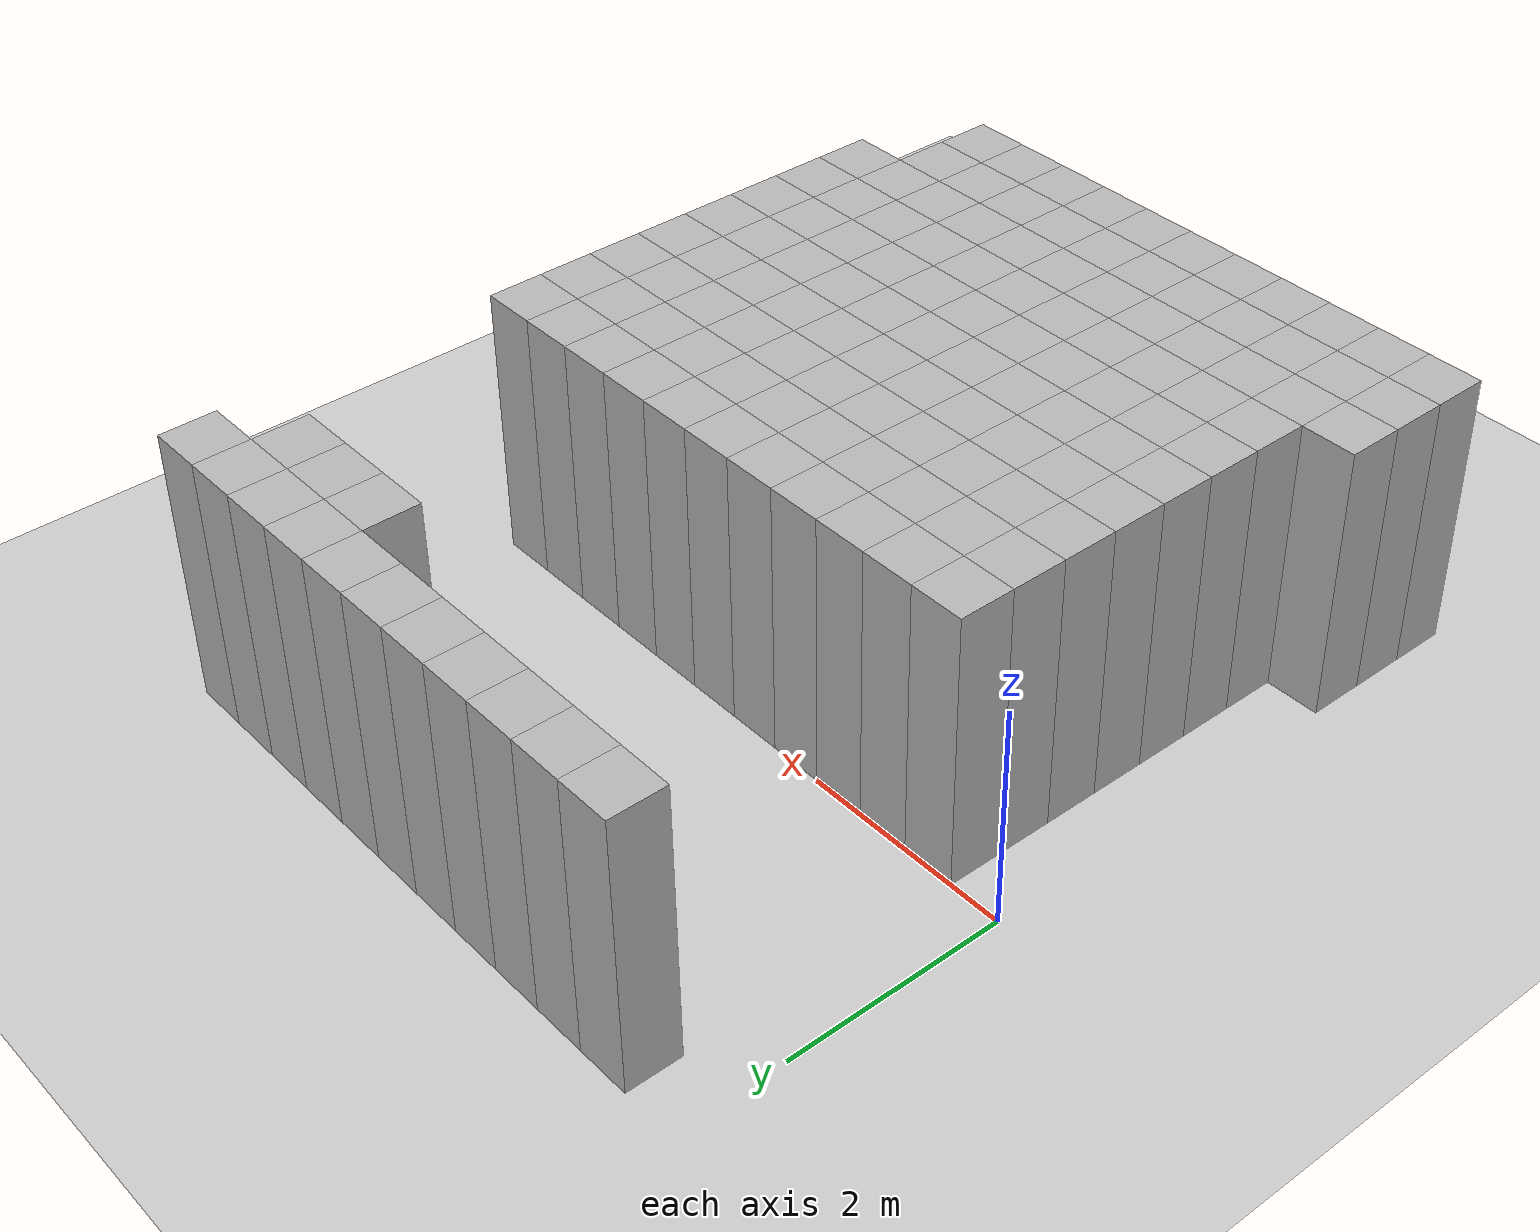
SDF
<sdf version="1.6">
 <world name="map_world">
  <include><uri>model://ground_plane</uri></include>
  <include><uri>model://sun</uri></include>
  <model name="wall_11">
   <static>true</static>
   <pose>0.750 2.750 1.250 0 0 0</pose>
   <link name="link">
    <collision name="collision"><geometry><box><size>0.500 0.500 2.500</size></box></geometry></collision>
    <visual name="visual"><geometry><box><size>0.500 0.500 2.500</size></box></geometry></visual>
   </link>
  </model>
  <model name="wall_12">
   <static>true</static>
   <pose>1.250 2.750 1.250 0 0 0</pose>
   <link name="link">
    <collision name="collision"><geometry><box><size>0.500 0.500 2.500</size></box></geometry></collision>
    <visual name="visual"><geometry><box><size>0.500 0.500 2.500</size></box></geometry></visual>
   </link>
  </model>
  <model name="wall_13">
   <static>true</static>
   <pose>1.750 2.750 1.250 0 0 0</pose>
   <link name="link">
    <collision name="collision"><geometry><box><size>0.500 0.500 2.500</size></box></geometry></collision>
    <visual name="visual"><geometry><box><size>0.500 0.500 2.500</size></box></geometry></visual>
   </link>
  </model>
  <model name="wall_14">
   <static>true</static>
   <pose>2.250 2.750 1.250 0 0 0</pose>
   <link name="link">
    <collision name="collision"><geometry><box><size>0.500 0.500 2.500</size></box></geometry></collision>
    <visual name="visual"><geometry><box><size>0.500 0.500 2.500</size></box></geometry></visual>
   </link>
  </model>
  <model name="wall_15">
   <static>true</static>
   <pose>2.750 2.750 1.250 0 0 0</pose>
   <link name="link">
    <collision name="collision"><geometry><box><size>0.500 0.500 2.500</size></box></geometry></collision>
    <visual name="visual"><geometry><box><size>0.500 0.500 2.500</size></box></geometry></visual>
   </link>
  </model>
  <model name="wall_16">
   <static>true</static>
   <pose>3.250 2.750 1.250 0 0 0</pose>
   <link name="link">
    <collision name="collision"><geometry><box><size>0.500 0.500 2.500</size></box></geometry></collision>
    <visual name="visual"><geometry><box><size>0.500 0.500 2.500</size></box></geometry></visual>
   </link>
  </model>
  <model name="wall_17">
   <static>true</static>
   <pose>3.750 2.750 1.250 0 0 0</pose>
   <link name="link">
    <collision name="collision"><geometry><box><size>0.500 0.500 2.500</size></box></geometry></collision>
    <visual name="visual"><geometry><box><size>0.500 0.500 2.500</size></box></geometry></visual>
   </link>
  </model>
  <model name="wall_18">
   <static>true</static>
   <pose>4.250 2.750 1.250 0 0 0</pose>
   <link name="link">
    <collision name="collision"><geometry><box><size>0.500 0.500 2.500</size></box></geometry></collision>
    <visual name="visual"><geometry><box><size>0.500 0.500 2.500</size></box></geometry></visual>
   </link>
  </model>
  <model name="wall_19">
   <static>true</static>
   <pose>4.750 2.750 1.250 0 0 0</pose>
   <link name="link">
    <collision name="collision"><geometry><box><size>0.500 0.500 2.500</size></box></geometry></collision>
    <visual name="visual"><geometry><box><size>0.500 0.500 2.500</size></box></geometry></visual>
   </link>
  </model>
  <model name="wall_20">
   <static>true</static>
   <pose>5.250 2.750 1.250 0 0 0</pose>
   <link name="link">
    <collision name="collision"><geometry><box><size>0.500 0.500 2.500</size></box></geometry></collision>
    <visual name="visual"><geometry><box><size>0.500 0.500 2.500</size></box></geometry></visual>
   </link>
  </model>
  <model name="wall_21">
   <static>true</static>
   <pose>5.750 2.750 1.250 0 0 0</pose>
   <link name="link">
    <collision name="collision"><geometry><box><size>0.500 0.500 2.500</size></box></geometry></collision>
    <visual name="visual"><geometry><box><size>0.500 0.500 2.500</size></box></geometry></visual>
   </link>
  </model>
  <model name="wall_89">
   <static>true</static>
   <pose>4.250 2.250 1.250 0 0 0</pose>
   <link name="link">
    <collision name="collision"><geometry><box><size>0.500 0.500 2.500</size></box></geometry></collision>
    <visual name="visual"><geometry><box><size>0.500 0.500 2.500</size></box></geometry></visual>
   </link>
  </model>
  <model name="wall_90">
   <static>true</static>
   <pose>4.750 2.250 1.250 0 0 0</pose>
   <link name="link">
    <collision name="collision"><geometry><box><size>0.500 0.500 2.500</size></box></geometry></collision>
    <visual name="visual"><geometry><box><size>0.500 0.500 2.500</size></box></geometry></visual>
   </link>
  </model>
  <model name="wall_91">
   <static>true</static>
   <pose>5.250 2.250 1.250 0 0 0</pose>
   <link name="link">
    <collision name="collision"><geometry><box><size>0.500 0.500 2.500</size></box></geometry></collision>
    <visual name="visual"><geometry><box><size>0.500 0.500 2.500</size></box></geometry></visual>
   </link>
  </model>
  <model name="wall_155">
   <static>true</static>
   <pose>0.750 -0.250 1.250 0 0 0</pose>
   <link name="link">
    <collision name="collision"><geometry><box><size>0.500 0.500 2.500</size></box></geometry></collision>
    <visual name="visual"><geometry><box><size>0.500 0.500 2.500</size></box></geometry></visual>
   </link>
  </model>
  <model name="wall_156">
   <static>true</static>
   <pose>1.250 -0.250 1.250 0 0 0</pose>
   <link name="link">
    <collision name="collision"><geometry><box><size>0.500 0.500 2.500</size></box></geometry></collision>
    <visual name="visual"><geometry><box><size>0.500 0.500 2.500</size></box></geometry></visual>
   </link>
  </model>
  <model name="wall_157">
   <static>true</static>
   <pose>1.750 -0.250 1.250 0 0 0</pose>
   <link name="link">
    <collision name="collision"><geometry><box><size>0.500 0.500 2.500</size></box></geometry></collision>
    <visual name="visual"><geometry><box><size>0.500 0.500 2.500</size></box></geometry></visual>
   </link>
  </model>
  <model name="wall_158">
   <static>true</static>
   <pose>2.250 -0.250 1.250 0 0 0</pose>
   <link name="link">
    <collision name="collision"><geometry><box><size>0.500 0.500 2.500</size></box></geometry></collision>
    <visual name="visual"><geometry><box><size>0.500 0.500 2.500</size></box></geometry></visual>
   </link>
  </model>
  <model name="wall_159">
   <static>true</static>
   <pose>2.750 -0.250 1.250 0 0 0</pose>
   <link name="link">
    <collision name="collision"><geometry><box><size>0.500 0.500 2.500</size></box></geometry></collision>
    <visual name="visual"><geometry><box><size>0.500 0.500 2.500</size></box></geometry></visual>
   </link>
  </model>
  <model name="wall_160">
   <static>true</static>
   <pose>3.250 -0.250 1.250 0 0 0</pose>
   <link name="link">
    <collision name="collision"><geometry><box><size>0.500 0.500 2.500</size></box></geometry></collision>
    <visual name="visual"><geometry><box><size>0.500 0.500 2.500</size></box></geometry></visual>
   </link>
  </model>
  <model name="wall_161">
   <static>true</static>
   <pose>3.750 -0.250 1.250 0 0 0</pose>
   <link name="link">
    <collision name="collision"><geometry><box><size>0.500 0.500 2.500</size></box></geometry></collision>
    <visual name="visual"><geometry><box><size>0.500 0.500 2.500</size></box></geometry></visual>
   </link>
  </model>
  <model name="wall_162">
   <static>true</static>
   <pose>4.250 -0.250 1.250 0 0 0</pose>
   <link name="link">
    <collision name="collision"><geometry><box><size>0.500 0.500 2.500</size></box></geometry></collision>
    <visual name="visual"><geometry><box><size>0.500 0.500 2.500</size></box></geometry></visual>
   </link>
  </model>
  <model name="wall_163">
   <static>true</static>
   <pose>4.750 -0.250 1.250 0 0 0</pose>
   <link name="link">
    <collision name="collision"><geometry><box><size>0.500 0.500 2.500</size></box></geometry></collision>
    <visual name="visual"><geometry><box><size>0.500 0.500 2.500</size></box></geometry></visual>
   </link>
  </model>
  <model name="wall_164">
   <static>true</static>
   <pose>5.250 -0.250 1.250 0 0 0</pose>
   <link name="link">
    <collision name="collision"><geometry><box><size>0.500 0.500 2.500</size></box></geometry></collision>
    <visual name="visual"><geometry><box><size>0.500 0.500 2.500</size></box></geometry></visual>
   </link>
  </model>
  <model name="wall_165">
   <static>true</static>
   <pose>5.750 -0.250 1.250 0 0 0</pose>
   <link name="link">
    <collision name="collision"><geometry><box><size>0.500 0.500 2.500</size></box></geometry></collision>
    <visual name="visual"><geometry><box><size>0.500 0.500 2.500</size></box></geometry></visual>
   </link>
  </model>
  <model name="wall_227">
   <static>true</static>
   <pose>0.750 -0.750 1.250 0 0 0</pose>
   <link name="link">
    <collision name="collision"><geometry><box><size>0.500 0.500 2.500</size></box></geometry></collision>
    <visual name="visual"><geometry><box><size>0.500 0.500 2.500</size></box></geometry></visual>
   </link>
  </model>
  <model name="wall_228">
   <static>true</static>
   <pose>1.250 -0.750 1.250 0 0 0</pose>
   <link name="link">
    <collision name="collision"><geometry><box><size>0.500 0.500 2.500</size></box></geometry></collision>
    <visual name="visual"><geometry><box><size>0.500 0.500 2.500</size></box></geometry></visual>
   </link>
  </model>
  <model name="wall_229">
   <static>true</static>
   <pose>1.750 -0.750 1.250 0 0 0</pose>
   <link name="link">
    <collision name="collision"><geometry><box><size>0.500 0.500 2.500</size></box></geometry></collision>
    <visual name="visual"><geometry><box><size>0.500 0.500 2.500</size></box></geometry></visual>
   </link>
  </model>
  <model name="wall_230">
   <static>true</static>
   <pose>2.250 -0.750 1.250 0 0 0</pose>
   <link name="link">
    <collision name="collision"><geometry><box><size>0.500 0.500 2.500</size></box></geometry></collision>
    <visual name="visual"><geometry><box><size>0.500 0.500 2.500</size></box></geometry></visual>
   </link>
  </model>
  <model name="wall_231">
   <static>true</static>
   <pose>2.750 -0.750 1.250 0 0 0</pose>
   <link name="link">
    <collision name="collision"><geometry><box><size>0.500 0.500 2.500</size></box></geometry></collision>
    <visual name="visual"><geometry><box><size>0.500 0.500 2.500</size></box></geometry></visual>
   </link>
  </model>
  <model name="wall_232">
   <static>true</static>
   <pose>3.250 -0.750 1.250 0 0 0</pose>
   <link name="link">
    <collision name="collision"><geometry><box><size>0.500 0.500 2.500</size></box></geometry></collision>
    <visual name="visual"><geometry><box><size>0.500 0.500 2.500</size></box></geometry></visual>
   </link>
  </model>
  <model name="wall_233">
   <static>true</static>
   <pose>3.750 -0.750 1.250 0 0 0</pose>
   <link name="link">
    <collision name="collision"><geometry><box><size>0.500 0.500 2.500</size></box></geometry></collision>
    <visual name="visual"><geometry><box><size>0.500 0.500 2.500</size></box></geometry></visual>
   </link>
  </model>
  <model name="wall_234">
   <static>true</static>
   <pose>4.250 -0.750 1.250 0 0 0</pose>
   <link name="link">
    <collision name="collision"><geometry><box><size>0.500 0.500 2.500</size></box></geometry></collision>
    <visual name="visual"><geometry><box><size>0.500 0.500 2.500</size></box></geometry></visual>
   </link>
  </model>
  <model name="wall_235">
   <static>true</static>
   <pose>4.750 -0.750 1.250 0 0 0</pose>
   <link name="link">
    <collision name="collision"><geometry><box><size>0.500 0.500 2.500</size></box></geometry></collision>
    <visual name="visual"><geometry><box><size>0.500 0.500 2.500</size></box></geometry></visual>
   </link>
  </model>
  <model name="wall_236">
   <static>true</static>
   <pose>5.250 -0.750 1.250 0 0 0</pose>
   <link name="link">
    <collision name="collision"><geometry><box><size>0.500 0.500 2.500</size></box></geometry></collision>
    <visual name="visual"><geometry><box><size>0.500 0.500 2.500</size></box></geometry></visual>
   </link>
  </model>
  <model name="wall_237">
   <static>true</static>
   <pose>5.750 -0.750 1.250 0 0 0</pose>
   <link name="link">
    <collision name="collision"><geometry><box><size>0.500 0.500 2.500</size></box></geometry></collision>
    <visual name="visual"><geometry><box><size>0.500 0.500 2.500</size></box></geometry></visual>
   </link>
  </model>
  <model name="wall_299">
   <static>true</static>
   <pose>0.750 -1.250 1.250 0 0 0</pose>
   <link name="link">
    <collision name="collision"><geometry><box><size>0.500 0.500 2.500</size></box></geometry></collision>
    <visual name="visual"><geometry><box><size>0.500 0.500 2.500</size></box></geometry></visual>
   </link>
  </model>
  <model name="wall_300">
   <static>true</static>
   <pose>1.250 -1.250 1.250 0 0 0</pose>
   <link name="link">
    <collision name="collision"><geometry><box><size>0.500 0.500 2.500</size></box></geometry></collision>
    <visual name="visual"><geometry><box><size>0.500 0.500 2.500</size></box></geometry></visual>
   </link>
  </model>
  <model name="wall_301">
   <static>true</static>
   <pose>1.750 -1.250 1.250 0 0 0</pose>
   <link name="link">
    <collision name="collision"><geometry><box><size>0.500 0.500 2.500</size></box></geometry></collision>
    <visual name="visual"><geometry><box><size>0.500 0.500 2.500</size></box></geometry></visual>
   </link>
  </model>
  <model name="wall_302">
   <static>true</static>
   <pose>2.250 -1.250 1.250 0 0 0</pose>
   <link name="link">
    <collision name="collision"><geometry><box><size>0.500 0.500 2.500</size></box></geometry></collision>
    <visual name="visual"><geometry><box><size>0.500 0.500 2.500</size></box></geometry></visual>
   </link>
  </model>
  <model name="wall_303">
   <static>true</static>
   <pose>2.750 -1.250 1.250 0 0 0</pose>
   <link name="link">
    <collision name="collision"><geometry><box><size>0.500 0.500 2.500</size></box></geometry></collision>
    <visual name="visual"><geometry><box><size>0.500 0.500 2.500</size></box></geometry></visual>
   </link>
  </model>
  <model name="wall_304">
   <static>true</static>
   <pose>3.250 -1.250 1.250 0 0 0</pose>
   <link name="link">
    <collision name="collision"><geometry><box><size>0.500 0.500 2.500</size></box></geometry></collision>
    <visual name="visual"><geometry><box><size>0.500 0.500 2.500</size></box></geometry></visual>
   </link>
  </model>
  <model name="wall_305">
   <static>true</static>
   <pose>3.750 -1.250 1.250 0 0 0</pose>
   <link name="link">
    <collision name="collision"><geometry><box><size>0.500 0.500 2.500</size></box></geometry></collision>
    <visual name="visual"><geometry><box><size>0.500 0.500 2.500</size></box></geometry></visual>
   </link>
  </model>
  <model name="wall_306">
   <static>true</static>
   <pose>4.250 -1.250 1.250 0 0 0</pose>
   <link name="link">
    <collision name="collision"><geometry><box><size>0.500 0.500 2.500</size></box></geometry></collision>
    <visual name="visual"><geometry><box><size>0.500 0.500 2.500</size></box></geometry></visual>
   </link>
  </model>
  <model name="wall_307">
   <static>true</static>
   <pose>4.750 -1.250 1.250 0 0 0</pose>
   <link name="link">
    <collision name="collision"><geometry><box><size>0.500 0.500 2.500</size></box></geometry></collision>
    <visual name="visual"><geometry><box><size>0.500 0.500 2.500</size></box></geometry></visual>
   </link>
  </model>
  <model name="wall_308">
   <static>true</static>
   <pose>5.250 -1.250 1.250 0 0 0</pose>
   <link name="link">
    <collision name="collision"><geometry><box><size>0.500 0.500 2.500</size></box></geometry></collision>
    <visual name="visual"><geometry><box><size>0.500 0.500 2.500</size></box></geometry></visual>
   </link>
  </model>
  <model name="wall_309">
   <static>true</static>
   <pose>5.750 -1.250 1.250 0 0 0</pose>
   <link name="link">
    <collision name="collision"><geometry><box><size>0.500 0.500 2.500</size></box></geometry></collision>
    <visual name="visual"><geometry><box><size>0.500 0.500 2.500</size></box></geometry></visual>
   </link>
  </model>
  <model name="wall_371">
   <static>true</static>
   <pose>0.750 -1.750 1.250 0 0 0</pose>
   <link name="link">
    <collision name="collision"><geometry><box><size>0.500 0.500 2.500</size></box></geometry></collision>
    <visual name="visual"><geometry><box><size>0.500 0.500 2.500</size></box></geometry></visual>
   </link>
  </model>
  <model name="wall_372">
   <static>true</static>
   <pose>1.250 -1.750 1.250 0 0 0</pose>
   <link name="link">
    <collision name="collision"><geometry><box><size>0.500 0.500 2.500</size></box></geometry></collision>
    <visual name="visual"><geometry><box><size>0.500 0.500 2.500</size></box></geometry></visual>
   </link>
  </model>
  <model name="wall_373">
   <static>true</static>
   <pose>1.750 -1.750 1.250 0 0 0</pose>
   <link name="link">
    <collision name="collision"><geometry><box><size>0.500 0.500 2.500</size></box></geometry></collision>
    <visual name="visual"><geometry><box><size>0.500 0.500 2.500</size></box></geometry></visual>
   </link>
  </model>
  <model name="wall_374">
   <static>true</static>
   <pose>2.250 -1.750 1.250 0 0 0</pose>
   <link name="link">
    <collision name="collision"><geometry><box><size>0.500 0.500 2.500</size></box></geometry></collision>
    <visual name="visual"><geometry><box><size>0.500 0.500 2.500</size></box></geometry></visual>
   </link>
  </model>
  <model name="wall_375">
   <static>true</static>
   <pose>2.750 -1.750 1.250 0 0 0</pose>
   <link name="link">
    <collision name="collision"><geometry><box><size>0.500 0.500 2.500</size></box></geometry></collision>
    <visual name="visual"><geometry><box><size>0.500 0.500 2.500</size></box></geometry></visual>
   </link>
  </model>
  <model name="wall_376">
   <static>true</static>
   <pose>3.250 -1.750 1.250 0 0 0</pose>
   <link name="link">
    <collision name="collision"><geometry><box><size>0.500 0.500 2.500</size></box></geometry></collision>
    <visual name="visual"><geometry><box><size>0.500 0.500 2.500</size></box></geometry></visual>
   </link>
  </model>
  <model name="wall_377">
   <static>true</static>
   <pose>3.750 -1.750 1.250 0 0 0</pose>
   <link name="link">
    <collision name="collision"><geometry><box><size>0.500 0.500 2.500</size></box></geometry></collision>
    <visual name="visual"><geometry><box><size>0.500 0.500 2.500</size></box></geometry></visual>
   </link>
  </model>
  <model name="wall_378">
   <static>true</static>
   <pose>4.250 -1.750 1.250 0 0 0</pose>
   <link name="link">
    <collision name="collision"><geometry><box><size>0.500 0.500 2.500</size></box></geometry></collision>
    <visual name="visual"><geometry><box><size>0.500 0.500 2.500</size></box></geometry></visual>
   </link>
  </model>
  <model name="wall_379">
   <static>true</static>
   <pose>4.750 -1.750 1.250 0 0 0</pose>
   <link name="link">
    <collision name="collision"><geometry><box><size>0.500 0.500 2.500</size></box></geometry></collision>
    <visual name="visual"><geometry><box><size>0.500 0.500 2.500</size></box></geometry></visual>
   </link>
  </model>
  <model name="wall_380">
   <static>true</static>
   <pose>5.250 -1.750 1.250 0 0 0</pose>
   <link name="link">
    <collision name="collision"><geometry><box><size>0.500 0.500 2.500</size></box></geometry></collision>
    <visual name="visual"><geometry><box><size>0.500 0.500 2.500</size></box></geometry></visual>
   </link>
  </model>
  <model name="wall_381">
   <static>true</static>
   <pose>5.750 -1.750 1.250 0 0 0</pose>
   <link name="link">
    <collision name="collision"><geometry><box><size>0.500 0.500 2.500</size></box></geometry></collision>
    <visual name="visual"><geometry><box><size>0.500 0.500 2.500</size></box></geometry></visual>
   </link>
  </model>
  <model name="wall_443">
   <static>true</static>
   <pose>0.750 -2.250 1.250 0 0 0</pose>
   <link name="link">
    <collision name="collision"><geometry><box><size>0.500 0.500 2.500</size></box></geometry></collision>
    <visual name="visual"><geometry><box><size>0.500 0.500 2.500</size></box></geometry></visual>
   </link>
  </model>
  <model name="wall_444">
   <static>true</static>
   <pose>1.250 -2.250 1.250 0 0 0</pose>
   <link name="link">
    <collision name="collision"><geometry><box><size>0.500 0.500 2.500</size></box></geometry></collision>
    <visual name="visual"><geometry><box><size>0.500 0.500 2.500</size></box></geometry></visual>
   </link>
  </model>
  <model name="wall_445">
   <static>true</static>
   <pose>1.750 -2.250 1.250 0 0 0</pose>
   <link name="link">
    <collision name="collision"><geometry><box><size>0.500 0.500 2.500</size></box></geometry></collision>
    <visual name="visual"><geometry><box><size>0.500 0.500 2.500</size></box></geometry></visual>
   </link>
  </model>
  <model name="wall_446">
   <static>true</static>
   <pose>2.250 -2.250 1.250 0 0 0</pose>
   <link name="link">
    <collision name="collision"><geometry><box><size>0.500 0.500 2.500</size></box></geometry></collision>
    <visual name="visual"><geometry><box><size>0.500 0.500 2.500</size></box></geometry></visual>
   </link>
  </model>
  <model name="wall_447">
   <static>true</static>
   <pose>2.750 -2.250 1.250 0 0 0</pose>
   <link name="link">
    <collision name="collision"><geometry><box><size>0.500 0.500 2.500</size></box></geometry></collision>
    <visual name="visual"><geometry><box><size>0.500 0.500 2.500</size></box></geometry></visual>
   </link>
  </model>
  <model name="wall_448">
   <static>true</static>
   <pose>3.250 -2.250 1.250 0 0 0</pose>
   <link name="link">
    <collision name="collision"><geometry><box><size>0.500 0.500 2.500</size></box></geometry></collision>
    <visual name="visual"><geometry><box><size>0.500 0.500 2.500</size></box></geometry></visual>
   </link>
  </model>
  <model name="wall_449">
   <static>true</static>
   <pose>3.750 -2.250 1.250 0 0 0</pose>
   <link name="link">
    <collision name="collision"><geometry><box><size>0.500 0.500 2.500</size></box></geometry></collision>
    <visual name="visual"><geometry><box><size>0.500 0.500 2.500</size></box></geometry></visual>
   </link>
  </model>
  <model name="wall_450">
   <static>true</static>
   <pose>4.250 -2.250 1.250 0 0 0</pose>
   <link name="link">
    <collision name="collision"><geometry><box><size>0.500 0.500 2.500</size></box></geometry></collision>
    <visual name="visual"><geometry><box><size>0.500 0.500 2.500</size></box></geometry></visual>
   </link>
  </model>
  <model name="wall_451">
   <static>true</static>
   <pose>4.750 -2.250 1.250 0 0 0</pose>
   <link name="link">
    <collision name="collision"><geometry><box><size>0.500 0.500 2.500</size></box></geometry></collision>
    <visual name="visual"><geometry><box><size>0.500 0.500 2.500</size></box></geometry></visual>
   </link>
  </model>
  <model name="wall_452">
   <static>true</static>
   <pose>5.250 -2.250 1.250 0 0 0</pose>
   <link name="link">
    <collision name="collision"><geometry><box><size>0.500 0.500 2.500</size></box></geometry></collision>
    <visual name="visual"><geometry><box><size>0.500 0.500 2.500</size></box></geometry></visual>
   </link>
  </model>
  <model name="wall_453">
   <static>true</static>
   <pose>5.750 -2.250 1.250 0 0 0</pose>
   <link name="link">
    <collision name="collision"><geometry><box><size>0.500 0.500 2.500</size></box></geometry></collision>
    <visual name="visual"><geometry><box><size>0.500 0.500 2.500</size></box></geometry></visual>
   </link>
  </model>
  <model name="wall_515">
   <static>true</static>
   <pose>0.750 -2.750 1.250 0 0 0</pose>
   <link name="link">
    <collision name="collision"><geometry><box><size>0.500 0.500 2.500</size></box></geometry></collision>
    <visual name="visual"><geometry><box><size>0.500 0.500 2.500</size></box></geometry></visual>
   </link>
  </model>
  <model name="wall_516">
   <static>true</static>
   <pose>1.250 -2.750 1.250 0 0 0</pose>
   <link name="link">
    <collision name="collision"><geometry><box><size>0.500 0.500 2.500</size></box></geometry></collision>
    <visual name="visual"><geometry><box><size>0.500 0.500 2.500</size></box></geometry></visual>
   </link>
  </model>
  <model name="wall_517">
   <static>true</static>
   <pose>1.750 -2.750 1.250 0 0 0</pose>
   <link name="link">
    <collision name="collision"><geometry><box><size>0.500 0.500 2.500</size></box></geometry></collision>
    <visual name="visual"><geometry><box><size>0.500 0.500 2.500</size></box></geometry></visual>
   </link>
  </model>
  <model name="wall_518">
   <static>true</static>
   <pose>2.250 -2.750 1.250 0 0 0</pose>
   <link name="link">
    <collision name="collision"><geometry><box><size>0.500 0.500 2.500</size></box></geometry></collision>
    <visual name="visual"><geometry><box><size>0.500 0.500 2.500</size></box></geometry></visual>
   </link>
  </model>
  <model name="wall_519">
   <static>true</static>
   <pose>2.750 -2.750 1.250 0 0 0</pose>
   <link name="link">
    <collision name="collision"><geometry><box><size>0.500 0.500 2.500</size></box></geometry></collision>
    <visual name="visual"><geometry><box><size>0.500 0.500 2.500</size></box></geometry></visual>
   </link>
  </model>
  <model name="wall_520">
   <static>true</static>
   <pose>3.250 -2.750 1.250 0 0 0</pose>
   <link name="link">
    <collision name="collision"><geometry><box><size>0.500 0.500 2.500</size></box></geometry></collision>
    <visual name="visual"><geometry><box><size>0.500 0.500 2.500</size></box></geometry></visual>
   </link>
  </model>
  <model name="wall_521">
   <static>true</static>
   <pose>3.750 -2.750 1.250 0 0 0</pose>
   <link name="link">
    <collision name="collision"><geometry><box><size>0.500 0.500 2.500</size></box></geometry></collision>
    <visual name="visual"><geometry><box><size>0.500 0.500 2.500</size></box></geometry></visual>
   </link>
  </model>
  <model name="wall_522">
   <static>true</static>
   <pose>4.250 -2.750 1.250 0 0 0</pose>
   <link name="link">
    <collision name="collision"><geometry><box><size>0.500 0.500 2.500</size></box></geometry></collision>
    <visual name="visual"><geometry><box><size>0.500 0.500 2.500</size></box></geometry></visual>
   </link>
  </model>
  <model name="wall_523">
   <static>true</static>
   <pose>4.750 -2.750 1.250 0 0 0</pose>
   <link name="link">
    <collision name="collision"><geometry><box><size>0.500 0.500 2.500</size></box></geometry></collision>
    <visual name="visual"><geometry><box><size>0.500 0.500 2.500</size></box></geometry></visual>
   </link>
  </model>
  <model name="wall_524">
   <static>true</static>
   <pose>5.250 -2.750 1.250 0 0 0</pose>
   <link name="link">
    <collision name="collision"><geometry><box><size>0.500 0.500 2.500</size></box></geometry></collision>
    <visual name="visual"><geometry><box><size>0.500 0.500 2.500</size></box></geometry></visual>
   </link>
  </model>
  <model name="wall_525">
   <static>true</static>
   <pose>5.750 -2.750 1.250 0 0 0</pose>
   <link name="link">
    <collision name="collision"><geometry><box><size>0.500 0.500 2.500</size></box></geometry></collision>
    <visual name="visual"><geometry><box><size>0.500 0.500 2.500</size></box></geometry></visual>
   </link>
  </model>
  <model name="wall_587">
   <static>true</static>
   <pose>0.750 -3.250 1.250 0 0 0</pose>
   <link name="link">
    <collision name="collision"><geometry><box><size>0.500 0.500 2.500</size></box></geometry></collision>
    <visual name="visual"><geometry><box><size>0.500 0.500 2.500</size></box></geometry></visual>
   </link>
  </model>
  <model name="wall_588">
   <static>true</static>
   <pose>1.250 -3.250 1.250 0 0 0</pose>
   <link name="link">
    <collision name="collision"><geometry><box><size>0.500 0.500 2.500</size></box></geometry></collision>
    <visual name="visual"><geometry><box><size>0.500 0.500 2.500</size></box></geometry></visual>
   </link>
  </model>
  <model name="wall_589">
   <static>true</static>
   <pose>1.750 -3.250 1.250 0 0 0</pose>
   <link name="link">
    <collision name="collision"><geometry><box><size>0.500 0.500 2.500</size></box></geometry></collision>
    <visual name="visual"><geometry><box><size>0.500 0.500 2.500</size></box></geometry></visual>
   </link>
  </model>
  <model name="wall_590">
   <static>true</static>
   <pose>2.250 -3.250 1.250 0 0 0</pose>
   <link name="link">
    <collision name="collision"><geometry><box><size>0.500 0.500 2.500</size></box></geometry></collision>
    <visual name="visual"><geometry><box><size>0.500 0.500 2.500</size></box></geometry></visual>
   </link>
  </model>
  <model name="wall_591">
   <static>true</static>
   <pose>2.750 -3.250 1.250 0 0 0</pose>
   <link name="link">
    <collision name="collision"><geometry><box><size>0.500 0.500 2.500</size></box></geometry></collision>
    <visual name="visual"><geometry><box><size>0.500 0.500 2.500</size></box></geometry></visual>
   </link>
  </model>
  <model name="wall_592">
   <static>true</static>
   <pose>3.250 -3.250 1.250 0 0 0</pose>
   <link name="link">
    <collision name="collision"><geometry><box><size>0.500 0.500 2.500</size></box></geometry></collision>
    <visual name="visual"><geometry><box><size>0.500 0.500 2.500</size></box></geometry></visual>
   </link>
  </model>
  <model name="wall_593">
   <static>true</static>
   <pose>3.750 -3.250 1.250 0 0 0</pose>
   <link name="link">
    <collision name="collision"><geometry><box><size>0.500 0.500 2.500</size></box></geometry></collision>
    <visual name="visual"><geometry><box><size>0.500 0.500 2.500</size></box></geometry></visual>
   </link>
  </model>
  <model name="wall_594">
   <static>true</static>
   <pose>4.250 -3.250 1.250 0 0 0</pose>
   <link name="link">
    <collision name="collision"><geometry><box><size>0.500 0.500 2.500</size></box></geometry></collision>
    <visual name="visual"><geometry><box><size>0.500 0.500 2.500</size></box></geometry></visual>
   </link>
  </model>
  <model name="wall_595">
   <static>true</static>
   <pose>4.750 -3.250 1.250 0 0 0</pose>
   <link name="link">
    <collision name="collision"><geometry><box><size>0.500 0.500 2.500</size></box></geometry></collision>
    <visual name="visual"><geometry><box><size>0.500 0.500 2.500</size></box></geometry></visual>
   </link>
  </model>
  <model name="wall_596">
   <static>true</static>
   <pose>5.250 -3.250 1.250 0 0 0</pose>
   <link name="link">
    <collision name="collision"><geometry><box><size>0.500 0.500 2.500</size></box></geometry></collision>
    <visual name="visual"><geometry><box><size>0.500 0.500 2.500</size></box></geometry></visual>
   </link>
  </model>
  <model name="wall_597">
   <static>true</static>
   <pose>5.750 -3.250 1.250 0 0 0</pose>
   <link name="link">
    <collision name="collision"><geometry><box><size>0.500 0.500 2.500</size></box></geometry></collision>
    <visual name="visual"><geometry><box><size>0.500 0.500 2.500</size></box></geometry></visual>
   </link>
  </model>
  <model name="wall_658">
   <static>true</static>
   <pose>0.250 -3.750 1.250 0 0 0</pose>
   <link name="link">
    <collision name="collision"><geometry><box><size>0.500 0.500 2.500</size></box></geometry></collision>
    <visual name="visual"><geometry><box><size>0.500 0.500 2.500</size></box></geometry></visual>
   </link>
  </model>
  <model name="wall_659">
   <static>true</static>
   <pose>0.750 -3.750 1.250 0 0 0</pose>
   <link name="link">
    <collision name="collision"><geometry><box><size>0.500 0.500 2.500</size></box></geometry></collision>
    <visual name="visual"><geometry><box><size>0.500 0.500 2.500</size></box></geometry></visual>
   </link>
  </model>
  <model name="wall_660">
   <static>true</static>
   <pose>1.250 -3.750 1.250 0 0 0</pose>
   <link name="link">
    <collision name="collision"><geometry><box><size>0.500 0.500 2.500</size></box></geometry></collision>
    <visual name="visual"><geometry><box><size>0.500 0.500 2.500</size></box></geometry></visual>
   </link>
  </model>
  <model name="wall_661">
   <static>true</static>
   <pose>1.750 -3.750 1.250 0 0 0</pose>
   <link name="link">
    <collision name="collision"><geometry><box><size>0.500 0.500 2.500</size></box></geometry></collision>
    <visual name="visual"><geometry><box><size>0.500 0.500 2.500</size></box></geometry></visual>
   </link>
  </model>
  <model name="wall_662">
   <static>true</static>
   <pose>2.250 -3.750 1.250 0 0 0</pose>
   <link name="link">
    <collision name="collision"><geometry><box><size>0.500 0.500 2.500</size></box></geometry></collision>
    <visual name="visual"><geometry><box><size>0.500 0.500 2.500</size></box></geometry></visual>
   </link>
  </model>
  <model name="wall_663">
   <static>true</static>
   <pose>2.750 -3.750 1.250 0 0 0</pose>
   <link name="link">
    <collision name="collision"><geometry><box><size>0.500 0.500 2.500</size></box></geometry></collision>
    <visual name="visual"><geometry><box><size>0.500 0.500 2.500</size></box></geometry></visual>
   </link>
  </model>
  <model name="wall_664">
   <static>true</static>
   <pose>3.250 -3.750 1.250 0 0 0</pose>
   <link name="link">
    <collision name="collision"><geometry><box><size>0.500 0.500 2.500</size></box></geometry></collision>
    <visual name="visual"><geometry><box><size>0.500 0.500 2.500</size></box></geometry></visual>
   </link>
  </model>
  <model name="wall_665">
   <static>true</static>
   <pose>3.750 -3.750 1.250 0 0 0</pose>
   <link name="link">
    <collision name="collision"><geometry><box><size>0.500 0.500 2.500</size></box></geometry></collision>
    <visual name="visual"><geometry><box><size>0.500 0.500 2.500</size></box></geometry></visual>
   </link>
  </model>
  <model name="wall_666">
   <static>true</static>
   <pose>4.250 -3.750 1.250 0 0 0</pose>
   <link name="link">
    <collision name="collision"><geometry><box><size>0.500 0.500 2.500</size></box></geometry></collision>
    <visual name="visual"><geometry><box><size>0.500 0.500 2.500</size></box></geometry></visual>
   </link>
  </model>
  <model name="wall_667">
   <static>true</static>
   <pose>4.750 -3.750 1.250 0 0 0</pose>
   <link name="link">
    <collision name="collision"><geometry><box><size>0.500 0.500 2.500</size></box></geometry></collision>
    <visual name="visual"><geometry><box><size>0.500 0.500 2.500</size></box></geometry></visual>
   </link>
  </model>
  <model name="wall_668">
   <static>true</static>
   <pose>5.250 -3.750 1.250 0 0 0</pose>
   <link name="link">
    <collision name="collision"><geometry><box><size>0.500 0.500 2.500</size></box></geometry></collision>
    <visual name="visual"><geometry><box><size>0.500 0.500 2.500</size></box></geometry></visual>
   </link>
  </model>
  <model name="wall_669">
   <static>true</static>
   <pose>5.750 -3.750 1.250 0 0 0</pose>
   <link name="link">
    <collision name="collision"><geometry><box><size>0.500 0.500 2.500</size></box></geometry></collision>
    <visual name="visual"><geometry><box><size>0.500 0.500 2.500</size></box></geometry></visual>
   </link>
  </model>
  <model name="wall_730">
   <static>true</static>
   <pose>0.250 -4.250 1.250 0 0 0</pose>
   <link name="link">
    <collision name="collision"><geometry><box><size>0.500 0.500 2.500</size></box></geometry></collision>
    <visual name="visual"><geometry><box><size>0.500 0.500 2.500</size></box></geometry></visual>
   </link>
  </model>
  <model name="wall_731">
   <static>true</static>
   <pose>0.750 -4.250 1.250 0 0 0</pose>
   <link name="link">
    <collision name="collision"><geometry><box><size>0.500 0.500 2.500</size></box></geometry></collision>
    <visual name="visual"><geometry><box><size>0.500 0.500 2.500</size></box></geometry></visual>
   </link>
  </model>
  <model name="wall_732">
   <static>true</static>
   <pose>1.250 -4.250 1.250 0 0 0</pose>
   <link name="link">
    <collision name="collision"><geometry><box><size>0.500 0.500 2.500</size></box></geometry></collision>
    <visual name="visual"><geometry><box><size>0.500 0.500 2.500</size></box></geometry></visual>
   </link>
  </model>
  <model name="wall_733">
   <static>true</static>
   <pose>1.750 -4.250 1.250 0 0 0</pose>
   <link name="link">
    <collision name="collision"><geometry><box><size>0.500 0.500 2.500</size></box></geometry></collision>
    <visual name="visual"><geometry><box><size>0.500 0.500 2.500</size></box></geometry></visual>
   </link>
  </model>
  <model name="wall_734">
   <static>true</static>
   <pose>2.250 -4.250 1.250 0 0 0</pose>
   <link name="link">
    <collision name="collision"><geometry><box><size>0.500 0.500 2.500</size></box></geometry></collision>
    <visual name="visual"><geometry><box><size>0.500 0.500 2.500</size></box></geometry></visual>
   </link>
  </model>
  <model name="wall_735">
   <static>true</static>
   <pose>2.750 -4.250 1.250 0 0 0</pose>
   <link name="link">
    <collision name="collision"><geometry><box><size>0.500 0.500 2.500</size></box></geometry></collision>
    <visual name="visual"><geometry><box><size>0.500 0.500 2.500</size></box></geometry></visual>
   </link>
  </model>
  <model name="wall_736">
   <static>true</static>
   <pose>3.250 -4.250 1.250 0 0 0</pose>
   <link name="link">
    <collision name="collision"><geometry><box><size>0.500 0.500 2.500</size></box></geometry></collision>
    <visual name="visual"><geometry><box><size>0.500 0.500 2.500</size></box></geometry></visual>
   </link>
  </model>
  <model name="wall_737">
   <static>true</static>
   <pose>3.750 -4.250 1.250 0 0 0</pose>
   <link name="link">
    <collision name="collision"><geometry><box><size>0.500 0.500 2.500</size></box></geometry></collision>
    <visual name="visual"><geometry><box><size>0.500 0.500 2.500</size></box></geometry></visual>
   </link>
  </model>
  <model name="wall_738">
   <static>true</static>
   <pose>4.250 -4.250 1.250 0 0 0</pose>
   <link name="link">
    <collision name="collision"><geometry><box><size>0.500 0.500 2.500</size></box></geometry></collision>
    <visual name="visual"><geometry><box><size>0.500 0.500 2.500</size></box></geometry></visual>
   </link>
  </model>
  <model name="wall_739">
   <static>true</static>
   <pose>4.750 -4.250 1.250 0 0 0</pose>
   <link name="link">
    <collision name="collision"><geometry><box><size>0.500 0.500 2.500</size></box></geometry></collision>
    <visual name="visual"><geometry><box><size>0.500 0.500 2.500</size></box></geometry></visual>
   </link>
  </model>
  <model name="wall_740">
   <static>true</static>
   <pose>5.250 -4.250 1.250 0 0 0</pose>
   <link name="link">
    <collision name="collision"><geometry><box><size>0.500 0.500 2.500</size></box></geometry></collision>
    <visual name="visual"><geometry><box><size>0.500 0.500 2.500</size></box></geometry></visual>
   </link>
  </model>
  <model name="wall_802">
   <static>true</static>
   <pose>0.250 -4.750 1.250 0 0 0</pose>
   <link name="link">
    <collision name="collision"><geometry><box><size>0.500 0.500 2.500</size></box></geometry></collision>
    <visual name="visual"><geometry><box><size>0.500 0.500 2.500</size></box></geometry></visual>
   </link>
  </model>
  <model name="wall_803">
   <static>true</static>
   <pose>0.750 -4.750 1.250 0 0 0</pose>
   <link name="link">
    <collision name="collision"><geometry><box><size>0.500 0.500 2.500</size></box></geometry></collision>
    <visual name="visual"><geometry><box><size>0.500 0.500 2.500</size></box></geometry></visual>
   </link>
  </model>
  <model name="wall_804">
   <static>true</static>
   <pose>1.250 -4.750 1.250 0 0 0</pose>
   <link name="link">
    <collision name="collision"><geometry><box><size>0.500 0.500 2.500</size></box></geometry></collision>
    <visual name="visual"><geometry><box><size>0.500 0.500 2.500</size></box></geometry></visual>
   </link>
  </model>
  <model name="wall_805">
   <static>true</static>
   <pose>1.750 -4.750 1.250 0 0 0</pose>
   <link name="link">
    <collision name="collision"><geometry><box><size>0.500 0.500 2.500</size></box></geometry></collision>
    <visual name="visual"><geometry><box><size>0.500 0.500 2.500</size></box></geometry></visual>
   </link>
  </model>
  <model name="wall_806">
   <static>true</static>
   <pose>2.250 -4.750 1.250 0 0 0</pose>
   <link name="link">
    <collision name="collision"><geometry><box><size>0.500 0.500 2.500</size></box></geometry></collision>
    <visual name="visual"><geometry><box><size>0.500 0.500 2.500</size></box></geometry></visual>
   </link>
  </model>
  <model name="wall_807">
   <static>true</static>
   <pose>2.750 -4.750 1.250 0 0 0</pose>
   <link name="link">
    <collision name="collision"><geometry><box><size>0.500 0.500 2.500</size></box></geometry></collision>
    <visual name="visual"><geometry><box><size>0.500 0.500 2.500</size></box></geometry></visual>
   </link>
  </model>
  <model name="wall_808">
   <static>true</static>
   <pose>3.250 -4.750 1.250 0 0 0</pose>
   <link name="link">
    <collision name="collision"><geometry><box><size>0.500 0.500 2.500</size></box></geometry></collision>
    <visual name="visual"><geometry><box><size>0.500 0.500 2.500</size></box></geometry></visual>
   </link>
  </model>
  <model name="wall_809">
   <static>true</static>
   <pose>3.750 -4.750 1.250 0 0 0</pose>
   <link name="link">
    <collision name="collision"><geometry><box><size>0.500 0.500 2.500</size></box></geometry></collision>
    <visual name="visual"><geometry><box><size>0.500 0.500 2.500</size></box></geometry></visual>
   </link>
  </model>
  <model name="wall_810">
   <static>true</static>
   <pose>4.250 -4.750 1.250 0 0 0</pose>
   <link name="link">
    <collision name="collision"><geometry><box><size>0.500 0.500 2.500</size></box></geometry></collision>
    <visual name="visual"><geometry><box><size>0.500 0.500 2.500</size></box></geometry></visual>
   </link>
  </model>
  <model name="wall_811">
   <static>true</static>
   <pose>4.750 -4.750 1.250 0 0 0</pose>
   <link name="link">
    <collision name="collision"><geometry><box><size>0.500 0.500 2.500</size></box></geometry></collision>
    <visual name="visual"><geometry><box><size>0.500 0.500 2.500</size></box></geometry></visual>
   </link>
  </model>
  <model name="wall_812">
   <static>true</static>
   <pose>5.250 -4.750 1.250 0 0 0</pose>
   <link name="link">
    <collision name="collision"><geometry><box><size>0.500 0.500 2.500</size></box></geometry></collision>
    <visual name="visual"><geometry><box><size>0.500 0.500 2.500</size></box></geometry></visual>
   </link>
  </model>
 </world>
</sdf>
